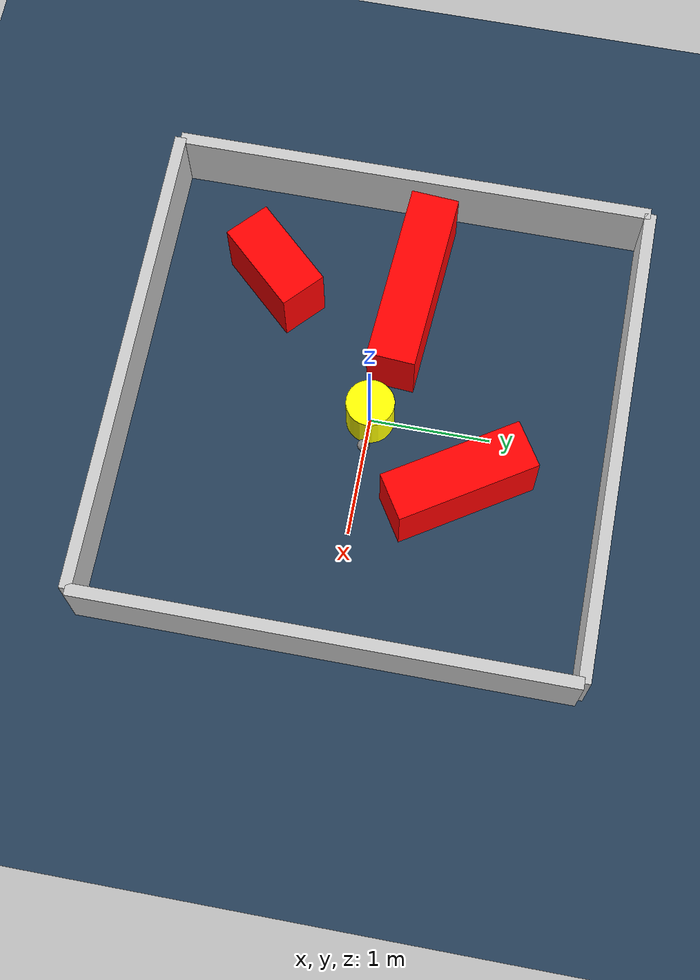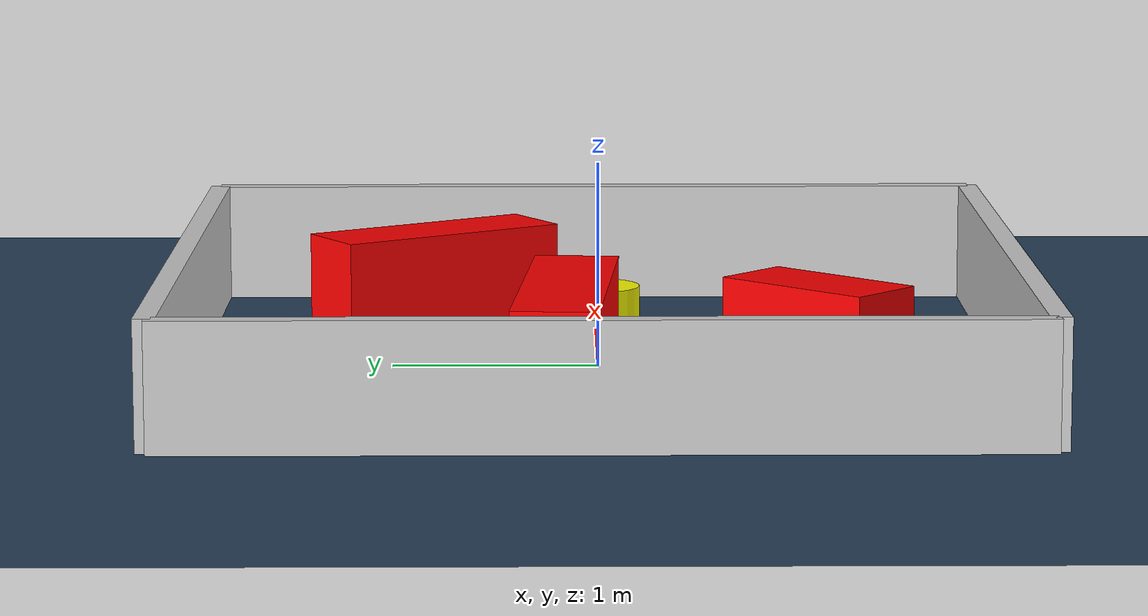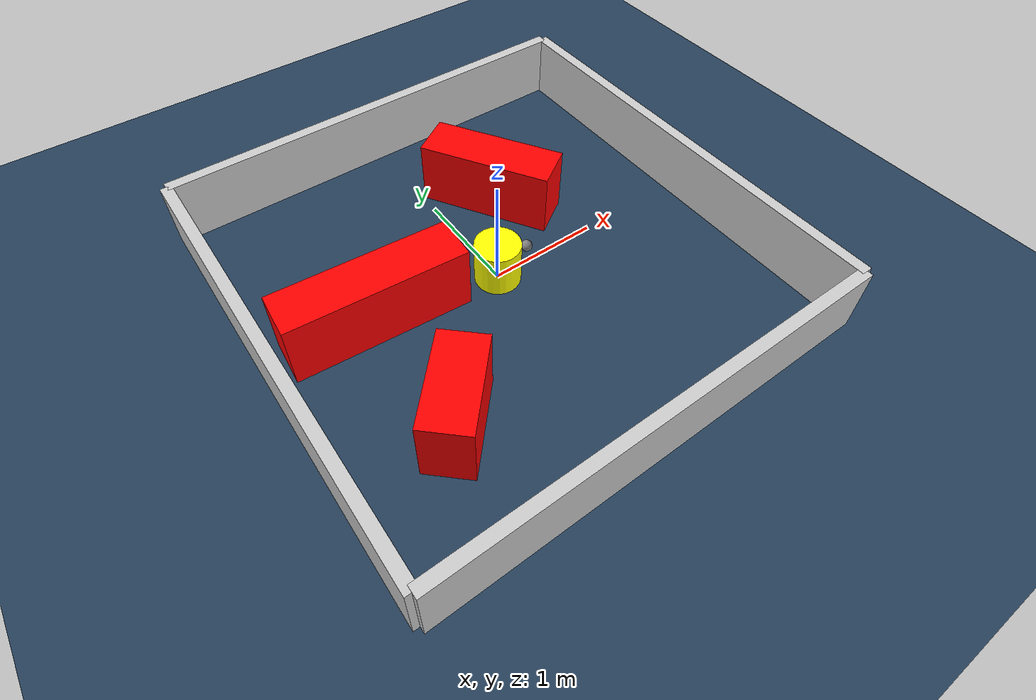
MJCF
<?xml version="1.0" ?>
<mujoco model="generated_environment">
  <option timestep="0.01" integrator="RK4" cone="elliptic"/>
  <default>
    <geom density="1"/>
  </default>
  <asset>
    <texture builtin="gradient" height="3072" rgb1="0.3 0.5 0.7" rgb2="0 0 0" type="skybox" width="512"/>
    <texture builtin="checker" height="300" mark="edge" markrgb="0.8 0.8 0.8" name="groundplane" rgb1="0.2 0.3 0.4" rgb2="0.1 0.2 0.3" type="2d" width="300"/>
    <material name="groundplane" reflectance="0.2" texrepeat="5 5" texture="groundplane" texuniform="true"/>
    <material name="robot" rgba="0.0 1.0 0.0 1"/>
  </asset>
  <worldbody>
    <light dir="0 0 -1" directional="true" pos="0 0 1.5"/>
    <geom condim="4" friction="1.0 0.005 0.001" material="groundplane" name="floor" size="0 0 0.05" type="plane"/>
    <body name="walls">
      <geom name="wall_1" condim="4" pos="-2.0 0.0 0.3" rgba="0.800000011920929 0.800000011920929 0.800000011920929 1.0" size="0.05 2.0 0.3" type="box"/>
      <geom name="wall_2" condim="4" pos="2.0 0.0 0.3" rgba="0.800000011920929 0.800000011920929 0.800000011920929 1.0" size="0.05 2.0 0.3" type="box"/>
      <geom name="wall_3" condim="4" pos="0.0 -2.0 0.3" rgba="0.800000011920929 0.800000011920929 0.800000011920929 1.0" size="2.0 0.05 0.3" type="box"/>
      <geom name="wall_4" condim="4" pos="0.0 2.0 0.3" rgba="0.800000011920929 0.800000011920929 0.800000011920929 1.0" size="2.0 0.05 0.3" type="box"/>
    </body>
    <body name="robot">
      <joint name="joint_x" type="slide" pos="0 0 0" axis="1 0 0"/>
      <joint name="joint_y" type="slide" pos="0 0 0" axis="0 1 0"/>
      <geom name="robot" type="sphere" pos="0.3 0.0 0.2" size="0.05" mass="5." friction="1.0 0.005 0.0001" condim="4" rgba="0.5 0.5 0.5 1.0"/>
      <site name="sensor_ball"/>
    </body>
    <body name="obstacle_movable_1">
      <geom name="obstacle_movable_1" condim="4" pos="0.0 0.0 0.2" euler="0 0 0.0" friction="1.0 0.005 0.001" rgba="1.0 1.0 0.0 1.0" size="0.2 0.2 0.0" type="cylinder" mass="0.1"/>
      <joint type="free"/>
    </body>
    <body name="obstacle_2_static">
      <geom name="obstacle_2_static" condim="4" pos="0.5052486998602961 0.8078454518376061 0.3" euler="0 0 302.4472309075994" friction="1.0 0.005 0.001" rgba="1 0 0 1" size="0.5951530305447332 0.2 0.3" type="box"/>
    </body>
    <body name="obstacle_3_static">
      <geom name="obstacle_3_static" condim="4" pos="-1.0659814071725602 -0.9972848610818992 0.3" euler="0 0 227.12432058634064" friction="1.0 0.005 0.001" rgba="1 0 0 1" size="0.403306789904578 0.2 0.3" type="box"/>
    </body>
    <body name="obstacle_4_static">
      <geom name="obstacle_4_static" condim="4" pos="-1.0822856468019295 0.15892947916179878 0.3" euler="0 0 355.9565812669779" friction="1.0 0.005 0.001" rgba="1 0 0 1" size="0.7612068312724172 0.2 0.3" type="box"/>
    </body>
  </worldbody>
  <actuator>
    <motor name="actuator_x" joint="joint_x" gear="1" ctrlrange="-1 1"/>
    <motor name="actuator_y" joint="joint_y" gear="1" ctrlrange="-1 1"/>
  </actuator>
</mujoco>
